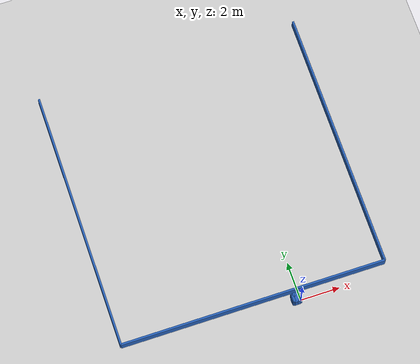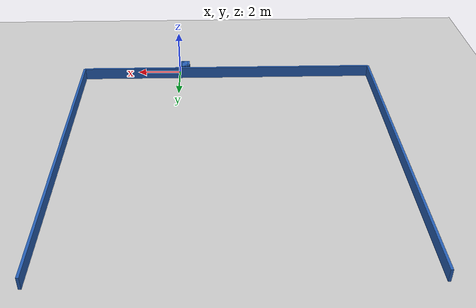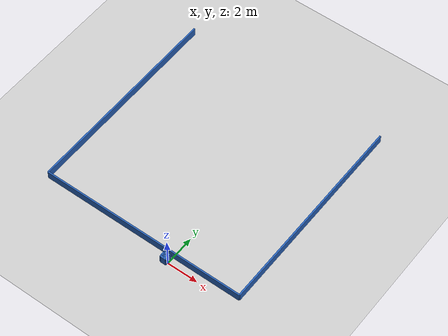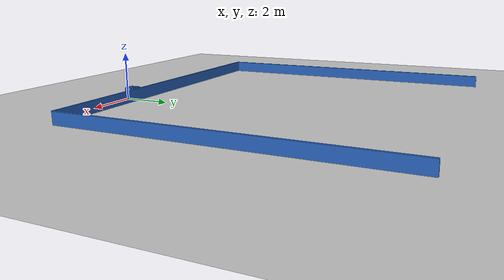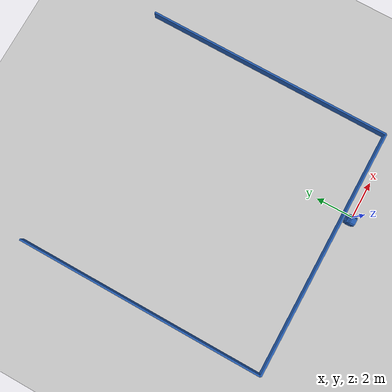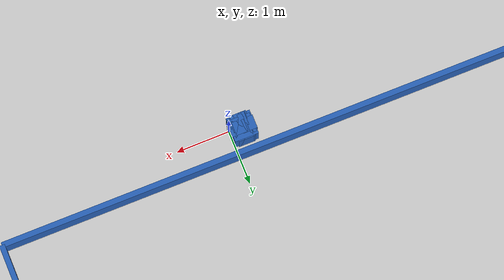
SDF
<?xml version="1.0" ?>
    <sdf version="1.5">
      <world name="default">
        <!-- A global light source -->
        <include>
          <uri>model://sun</uri>
        </include>
        <!-- A ground plane -->
        <include>
          <uri>model://ground_plane</uri>
        </include>

    <model name='libopen_space_final_T2B_115_24'>
      <static>1</static>
      <pose frame=''>-0.225000 0.075000 0.000000 0.000000 0.000000 0.000000</pose>
      <link name='link'>
        <inertial>
          <mass>1</mass>
          <inertia>
            <ixx>0.145833</ixx>
            <ixy>0</ixy>
            <ixz>0</ixz>
            <iyy>0.145833</iyy>
            <iyz>0</iyz>
            <izz>0.125</izz>
          </inertia>
        </inertial>
        <collision name='collision'>
          <geometry>
            <box>
              <size>0.26 0.49 1</size>
            </box>
          </geometry>
          <max_contacts>10</max_contacts>
          <surface>
            <contact>
              <ode/>
            </contact>
            <bounce/>
            <friction>
              <torsional>
                <ode/>
              </torsional>
              <ode/>
            </friction>
          </surface>
        </collision>
        <visual name='visual'>
          <geometry>
            <box>
              <size>0.26 0.49 1</size>
            </box>
          </geometry>
	    <material>
              <ambient>0.152000 0.379000 0.720000 1</ambient>
	      <diffuse>0.152000 0.379000 0.720000 1</diffuse>
          </material>
          <material>
            <script>
              <name>Gazebo/Grey</name>
              <uri>file://media/materials/scripts/gazebo.material</uri>
            </script>
          </material>
        </visual>
        <self_collide>0</self_collide>
        <kinematic>0</kinematic>
        <gravity>1</gravity>
      </link>
      <plugin name='libopen_space_final_T2B_115_24' filename='libopen_space_final_T2B_115_24.so'/>
    </model>

    <model name='libopen_space_final_T2B_73_9'>
      <static>1</static>
      <pose frame=''>-0.225000 0.075000 0.000000 0.000000 0.000000 0.000000</pose>
      <link name='link'>
        <inertial>
          <mass>1</mass>
          <inertia>
            <ixx>0.145833</ixx>
            <ixy>0</ixy>
            <ixz>0</ixz>
            <iyy>0.145833</iyy>
            <iyz>0</iyz>
            <izz>0.125</izz>
          </inertia>
        </inertial>
        <collision name='collision'>
          <geometry>
            <box>
              <size>0.33 0.15 1</size>
            </box>
          </geometry>
          <max_contacts>10</max_contacts>
          <surface>
            <contact>
              <ode/>
            </contact>
            <bounce/>
            <friction>
              <torsional>
                <ode/>
              </torsional>
              <ode/>
            </friction>
          </surface>
        </collision>
        <visual name='visual'>
          <geometry>
            <box>
              <size>0.33 0.15 1</size>
            </box>
          </geometry>
	    <material>
              <ambient>0.152000 0.379000 0.720000 1</ambient>
	      <diffuse>0.152000 0.379000 0.720000 1</diffuse>
          </material>
          <material>
            <script>
              <name>Gazebo/Grey</name>
              <uri>file://media/materials/scripts/gazebo.material</uri>
            </script>
          </material>
        </visual>
        <self_collide>0</self_collide>
        <kinematic>0</kinematic>
        <gravity>1</gravity>
      </link>
      <plugin name='libopen_space_final_T2B_73_9' filename='libopen_space_final_T2B_73_9.so'/>
    </model>

    <model name='libopen_space_final_T2B_122_2'>
      <static>1</static>
      <pose frame=''>-0.225000 0.075000 0.000000 0.000000 0.000000 0.000000</pose>
      <link name='link'>
        <inertial>
          <mass>1</mass>
          <inertia>
            <ixx>0.145833</ixx>
            <ixy>0</ixy>
            <ixz>0</ixz>
            <iyy>0.145833</iyy>
            <iyz>0</iyz>
            <izz>0.125</izz>
          </inertia>
        </inertial>
        <collision name='collision'>
          <geometry>
            <box>
              <size>0.32 0.25 1</size>
            </box>
          </geometry>
          <max_contacts>10</max_contacts>
          <surface>
            <contact>
              <ode/>
            </contact>
            <bounce/>
            <friction>
              <torsional>
                <ode/>
              </torsional>
              <ode/>
            </friction>
          </surface>
        </collision>
        <visual name='visual'>
          <geometry>
            <box>
              <size>0.32 0.25 1</size>
            </box>
          </geometry>
	    <material>
              <ambient>0.152000 0.379000 0.720000 1</ambient>
	      <diffuse>0.152000 0.379000 0.720000 1</diffuse>
          </material>
          <material>
            <script>
              <name>Gazebo/Grey</name>
              <uri>file://media/materials/scripts/gazebo.material</uri>
            </script>
          </material>
        </visual>
        <self_collide>0</self_collide>
        <kinematic>0</kinematic>
        <gravity>1</gravity>
      </link>
      <plugin name='libopen_space_final_T2B_122_2' filename='libopen_space_final_T2B_122_2.so'/>
    </model>

    <model name='libopen_space_final_T2B_90_15'>
      <static>1</static>
      <pose frame=''>-0.225000 0.075000 0.000000 0.000000 0.000000 0.000000</pose>
      <link name='link'>
        <inertial>
          <mass>1</mass>
          <inertia>
            <ixx>0.145833</ixx>
            <ixy>0</ixy>
            <ixz>0</ixz>
            <iyy>0.145833</iyy>
            <iyz>0</iyz>
            <izz>0.125</izz>
          </inertia>
        </inertial>
        <collision name='collision'>
          <geometry>
            <box>
              <size>0.18 0.27 1</size>
            </box>
          </geometry>
          <max_contacts>10</max_contacts>
          <surface>
            <contact>
              <ode/>
            </contact>
            <bounce/>
            <friction>
              <torsional>
                <ode/>
              </torsional>
              <ode/>
            </friction>
          </surface>
        </collision>
        <visual name='visual'>
          <geometry>
            <box>
              <size>0.18 0.27 1</size>
            </box>
          </geometry>
	    <material>
              <ambient>0.152000 0.379000 0.720000 1</ambient>
	      <diffuse>0.152000 0.379000 0.720000 1</diffuse>
          </material>
          <material>
            <script>
              <name>Gazebo/Grey</name>
              <uri>file://media/materials/scripts/gazebo.material</uri>
            </script>
          </material>
        </visual>
        <self_collide>0</self_collide>
        <kinematic>0</kinematic>
        <gravity>1</gravity>
      </link>
      <plugin name='libopen_space_final_T2B_90_15' filename='libopen_space_final_T2B_90_15.so'/>
    </model>

    <model name='libopen_space_final_T2B_96_0'>
      <static>1</static>
      <pose frame=''>-0.225000 0.075000 0.000000 0.000000 0.000000 0.000000</pose>
      <link name='link'>
        <inertial>
          <mass>1</mass>
          <inertia>
            <ixx>0.145833</ixx>
            <ixy>0</ixy>
            <ixz>0</ixz>
            <iyy>0.145833</iyy>
            <iyz>0</iyz>
            <izz>0.125</izz>
          </inertia>
        </inertial>
        <collision name='collision'>
          <geometry>
            <box>
              <size>0.20 0.27 1</size>
            </box>
          </geometry>
          <max_contacts>10</max_contacts>
          <surface>
            <contact>
              <ode/>
            </contact>
            <bounce/>
            <friction>
              <torsional>
                <ode/>
              </torsional>
              <ode/>
            </friction>
          </surface>
        </collision>
        <visual name='visual'>
          <geometry>
            <box>
              <size>0.20 0.27 1</size>
            </box>
          </geometry>
	    <material>
              <ambient>0.152000 0.379000 0.720000 1</ambient>
	      <diffuse>0.152000 0.379000 0.720000 1</diffuse>
          </material>
          <material>
            <script>
              <name>Gazebo/Grey</name>
              <uri>file://media/materials/scripts/gazebo.material</uri>
            </script>
          </material>
        </visual>
        <self_collide>0</self_collide>
        <kinematic>0</kinematic>
        <gravity>1</gravity>
      </link>
      <plugin name='libopen_space_final_T2B_96_0' filename='libopen_space_final_T2B_96_0.so'/>
    </model>

    <model name='libopen_space_final_T2B_125_86'>
      <static>1</static>
      <pose frame=''>-0.225000 0.075000 0.000000 0.000000 0.000000 0.000000</pose>
      <link name='link'>
        <inertial>
          <mass>1</mass>
          <inertia>
            <ixx>0.145833</ixx>
            <ixy>0</ixy>
            <ixz>0</ixz>
            <iyy>0.145833</iyy>
            <iyz>0</iyz>
            <izz>0.125</izz>
          </inertia>
        </inertial>
        <collision name='collision'>
          <geometry>
            <box>
              <size>0.31 0.49 1</size>
            </box>
          </geometry>
          <max_contacts>10</max_contacts>
          <surface>
            <contact>
              <ode/>
            </contact>
            <bounce/>
            <friction>
              <torsional>
                <ode/>
              </torsional>
              <ode/>
            </friction>
          </surface>
        </collision>
        <visual name='visual'>
          <geometry>
            <box>
              <size>0.31 0.49 1</size>
            </box>
          </geometry>
	    <material>
              <ambient>0.152000 0.379000 0.720000 1</ambient>
	      <diffuse>0.152000 0.379000 0.720000 1</diffuse>
          </material>
          <material>
            <script>
              <name>Gazebo/Grey</name>
              <uri>file://media/materials/scripts/gazebo.material</uri>
            </script>
          </material>
        </visual>
        <self_collide>0</self_collide>
        <kinematic>0</kinematic>
        <gravity>1</gravity>
      </link>
      <plugin name='libopen_space_final_T2B_125_86' filename='libopen_space_final_T2B_125_86.so'/>
    </model>

    <model name='libopen_space_final_T2B_55_44'>
      <static>1</static>
      <pose frame=''>-0.225000 0.075000 0.000000 0.000000 0.000000 0.000000</pose>
      <link name='link'>
        <inertial>
          <mass>1</mass>
          <inertia>
            <ixx>0.145833</ixx>
            <ixy>0</ixy>
            <ixz>0</ixz>
            <iyy>0.145833</iyy>
            <iyz>0</iyz>
            <izz>0.125</izz>
          </inertia>
        </inertial>
        <collision name='collision'>
          <geometry>
            <box>
              <size>0.45 0.45 1</size>
            </box>
          </geometry>
          <max_contacts>10</max_contacts>
          <surface>
            <contact>
              <ode/>
            </contact>
            <bounce/>
            <friction>
              <torsional>
                <ode/>
              </torsional>
              <ode/>
            </friction>
          </surface>
        </collision>
        <visual name='visual'>
          <geometry>
            <box>
              <size>0.45 0.45 1</size>
            </box>
          </geometry>
	    <material>
              <ambient>0.152000 0.379000 0.720000 1</ambient>
	      <diffuse>0.152000 0.379000 0.720000 1</diffuse>
          </material>
          <material>
            <script>
              <name>Gazebo/Grey</name>
              <uri>file://media/materials/scripts/gazebo.material</uri>
            </script>
          </material>
        </visual>
        <self_collide>0</self_collide>
        <kinematic>0</kinematic>
        <gravity>1</gravity>
      </link>
      <plugin name='libopen_space_final_T2B_55_44' filename='libopen_space_final_T2B_55_44.so'/>
    </model>

    <model name='libopen_space_final_T2B_113_82'>
      <static>1</static>
      <pose frame=''>-0.225000 0.075000 0.000000 0.000000 0.000000 0.000000</pose>
      <link name='link'>
        <inertial>
          <mass>1</mass>
          <inertia>
            <ixx>0.145833</ixx>
            <ixy>0</ixy>
            <ixz>0</ixz>
            <iyy>0.145833</iyy>
            <iyz>0</iyz>
            <izz>0.125</izz>
          </inertia>
        </inertial>
        <collision name='collision'>
          <geometry>
            <box>
              <size>0.24 0.48 1</size>
            </box>
          </geometry>
          <max_contacts>10</max_contacts>
          <surface>
            <contact>
              <ode/>
            </contact>
            <bounce/>
            <friction>
              <torsional>
                <ode/>
              </torsional>
              <ode/>
            </friction>
          </surface>
        </collision>
        <visual name='visual'>
          <geometry>
            <box>
              <size>0.24 0.48 1</size>
            </box>
          </geometry>
	    <material>
              <ambient>0.152000 0.379000 0.720000 1</ambient>
	      <diffuse>0.152000 0.379000 0.720000 1</diffuse>
          </material>
          <material>
            <script>
              <name>Gazebo/Grey</name>
              <uri>file://media/materials/scripts/gazebo.material</uri>
            </script>
          </material>
        </visual>
        <self_collide>0</self_collide>
        <kinematic>0</kinematic>
        <gravity>1</gravity>
      </link>
      <plugin name='libopen_space_final_T2B_113_82' filename='libopen_space_final_T2B_113_82.so'/>
    </model>

    <model name='libopen_space_final_T2B_103_85'>
      <static>1</static>
      <pose frame=''>-0.225000 0.075000 0.000000 0.000000 0.000000 0.000000</pose>
      <link name='link'>
        <inertial>
          <mass>1</mass>
          <inertia>
            <ixx>0.145833</ixx>
            <ixy>0</ixy>
            <ixz>0</ixz>
            <iyy>0.145833</iyy>
            <iyz>0</iyz>
            <izz>0.125</izz>
          </inertia>
        </inertial>
        <collision name='collision'>
          <geometry>
            <box>
              <size>0.48 0.25 1</size>
            </box>
          </geometry>
          <max_contacts>10</max_contacts>
          <surface>
            <contact>
              <ode/>
            </contact>
            <bounce/>
            <friction>
              <torsional>
                <ode/>
              </torsional>
              <ode/>
            </friction>
          </surface>
        </collision>
        <visual name='visual'>
          <geometry>
            <box>
              <size>0.48 0.25 1</size>
            </box>
          </geometry>
	    <material>
              <ambient>0.152000 0.379000 0.720000 1</ambient>
	      <diffuse>0.152000 0.379000 0.720000 1</diffuse>
          </material>
          <material>
            <script>
              <name>Gazebo/Grey</name>
              <uri>file://media/materials/scripts/gazebo.material</uri>
            </script>
          </material>
        </visual>
        <self_collide>0</self_collide>
        <kinematic>0</kinematic>
        <gravity>1</gravity>
      </link>
      <plugin name='libopen_space_final_T2B_103_85' filename='libopen_space_final_T2B_103_85.so'/>
    </model>

    <model name='libopen_space_final_T2B_90_7'>
      <static>1</static>
      <pose frame=''>-0.225000 0.075000 0.000000 0.000000 0.000000 0.000000</pose>
      <link name='link'>
        <inertial>
          <mass>1</mass>
          <inertia>
            <ixx>0.145833</ixx>
            <ixy>0</ixy>
            <ixz>0</ixz>
            <iyy>0.145833</iyy>
            <iyz>0</iyz>
            <izz>0.125</izz>
          </inertia>
        </inertial>
        <collision name='collision'>
          <geometry>
            <box>
              <size>0.41 0.36 1</size>
            </box>
          </geometry>
          <max_contacts>10</max_contacts>
          <surface>
            <contact>
              <ode/>
            </contact>
            <bounce/>
            <friction>
              <torsional>
                <ode/>
              </torsional>
              <ode/>
            </friction>
          </surface>
        </collision>
        <visual name='visual'>
          <geometry>
            <box>
              <size>0.41 0.36 1</size>
            </box>
          </geometry>
	    <material>
              <ambient>0.152000 0.379000 0.720000 1</ambient>
	      <diffuse>0.152000 0.379000 0.720000 1</diffuse>
          </material>
          <material>
            <script>
              <name>Gazebo/Grey</name>
              <uri>file://media/materials/scripts/gazebo.material</uri>
            </script>
          </material>
        </visual>
        <self_collide>0</self_collide>
        <kinematic>0</kinematic>
        <gravity>1</gravity>
      </link>
      <plugin name='libopen_space_final_T2B_90_7' filename='libopen_space_final_T2B_90_7.so'/>
    </model>

    <model name='libopen_space_final_T2B_148_40'>
      <static>1</static>
      <pose frame=''>-0.225000 0.075000 0.000000 0.000000 0.000000 0.000000</pose>
      <link name='link'>
        <inertial>
          <mass>1</mass>
          <inertia>
            <ixx>0.145833</ixx>
            <ixy>0</ixy>
            <ixz>0</ixz>
            <iyy>0.145833</iyy>
            <iyz>0</iyz>
            <izz>0.125</izz>
          </inertia>
        </inertial>
        <collision name='collision'>
          <geometry>
            <box>
              <size>0.36 0.40 1</size>
            </box>
          </geometry>
          <max_contacts>10</max_contacts>
          <surface>
            <contact>
              <ode/>
            </contact>
            <bounce/>
            <friction>
              <torsional>
                <ode/>
              </torsional>
              <ode/>
            </friction>
          </surface>
        </collision>
        <visual name='visual'>
          <geometry>
            <box>
              <size>0.36 0.40 1</size>
            </box>
          </geometry>
	    <material>
              <ambient>0.152000 0.379000 0.720000 1</ambient>
	      <diffuse>0.152000 0.379000 0.720000 1</diffuse>
          </material>
          <material>
            <script>
              <name>Gazebo/Grey</name>
              <uri>file://media/materials/scripts/gazebo.material</uri>
            </script>
          </material>
        </visual>
        <self_collide>0</self_collide>
        <kinematic>0</kinematic>
        <gravity>1</gravity>
      </link>
      <plugin name='libopen_space_final_T2B_148_40' filename='libopen_space_final_T2B_148_40.so'/>
    </model>

    <model name='libopen_space_final_T2B_73_55'>
      <static>1</static>
      <pose frame=''>-0.225000 0.075000 0.000000 0.000000 0.000000 0.000000</pose>
      <link name='link'>
        <inertial>
          <mass>1</mass>
          <inertia>
            <ixx>0.145833</ixx>
            <ixy>0</ixy>
            <ixz>0</ixz>
            <iyy>0.145833</iyy>
            <iyz>0</iyz>
            <izz>0.125</izz>
          </inertia>
        </inertial>
        <collision name='collision'>
          <geometry>
            <box>
              <size>0.22 0.44 1</size>
            </box>
          </geometry>
          <max_contacts>10</max_contacts>
          <surface>
            <contact>
              <ode/>
            </contact>
            <bounce/>
            <friction>
              <torsional>
                <ode/>
              </torsional>
              <ode/>
            </friction>
          </surface>
        </collision>
        <visual name='visual'>
          <geometry>
            <box>
              <size>0.22 0.44 1</size>
            </box>
          </geometry>
	    <material>
              <ambient>0.152000 0.379000 0.720000 1</ambient>
	      <diffuse>0.152000 0.379000 0.720000 1</diffuse>
          </material>
          <material>
            <script>
              <name>Gazebo/Grey</name>
              <uri>file://media/materials/scripts/gazebo.material</uri>
            </script>
          </material>
        </visual>
        <self_collide>0</self_collide>
        <kinematic>0</kinematic>
        <gravity>1</gravity>
      </link>
      <plugin name='libopen_space_final_T2B_73_55' filename='libopen_space_final_T2B_73_55.so'/>
    </model>

    <model name='libopen_space_final_T2B_91_29'>
      <static>1</static>
      <pose frame=''>-0.225000 0.075000 0.000000 0.000000 0.000000 0.000000</pose>
      <link name='link'>
        <inertial>
          <mass>1</mass>
          <inertia>
            <ixx>0.145833</ixx>
            <ixy>0</ixy>
            <ixz>0</ixz>
            <iyy>0.145833</iyy>
            <iyz>0</iyz>
            <izz>0.125</izz>
          </inertia>
        </inertial>
        <collision name='collision'>
          <geometry>
            <box>
              <size>0.13 0.22 1</size>
            </box>
          </geometry>
          <max_contacts>10</max_contacts>
          <surface>
            <contact>
              <ode/>
            </contact>
            <bounce/>
            <friction>
              <torsional>
                <ode/>
              </torsional>
              <ode/>
            </friction>
          </surface>
        </collision>
        <visual name='visual'>
          <geometry>
            <box>
              <size>0.13 0.22 1</size>
            </box>
          </geometry>
	    <material>
              <ambient>0.152000 0.379000 0.720000 1</ambient>
	      <diffuse>0.152000 0.379000 0.720000 1</diffuse>
          </material>
          <material>
            <script>
              <name>Gazebo/Grey</name>
              <uri>file://media/materials/scripts/gazebo.material</uri>
            </script>
          </material>
        </visual>
        <self_collide>0</self_collide>
        <kinematic>0</kinematic>
        <gravity>1</gravity>
      </link>
      <plugin name='libopen_space_final_T2B_91_29' filename='libopen_space_final_T2B_91_29.so'/>
    </model>

        <model name='bottom_wall'>
          <static>1</static>
          <pose frame=''>-2.25 0.5 0.000000 0.000000 0.000000 1.57079632</pose>
          <link name='link'>
            <inertial>
            <mass>1</mass>
            <inertia>
              <ixx>0.145833</ixx>
              <ixy>0</ixy>
              <ixz>0</ixz>
              <iyy>0.145833</iyy>
              <iyz>0</iyz>
              <izz>0.125</izz>
            </inertia>
            </inertial>
            <collision name='collision'>
            <geometry>
              <box>
              <size>0.1 13.5 1</size>
              </box>
            </geometry>
            <max_contacts>10</max_contacts>
            <surface>
              <contact>
              <ode/>
              </contact>
              <bounce/>
              <friction>
              <torsional>
                <ode/>
              </torsional>
              <ode/>
              </friction>
            </surface>
            </collision>
            <visual name='visual'>
            <geometry>
              <box>
              <size>0.1 13.5 1</size>
              </box>
            </geometry>
            <material>
              <ambient>0.152000 0.379000 0.720000 1</ambient>
            <diffuse>0.152000 0.379000 0.720000 1</diffuse>
            </material>
            <material>
              <script>
              <name>Gazebo/Grey</name>
              <uri>file://media/materials/scripts/gazebo.material</uri>
              </script>
            </material>
            </visual>
            <self_collide>0</self_collide>
            <kinematic>0</kinematic>
            <gravity>1</gravity>
          </link>
        </model>

        <model name='left_wall'>
          <static>1</static>
          <pose frame=''>-9 7.25 0.000000 0.000000 0.000000 0.000000</pose>
          <link name='link'>
            <inertial>
            <mass>1</mass>
            <inertia>
              <ixx>0.145833</ixx>
              <ixy>0</ixy>
              <ixz>0</ixz>
              <iyy>0.145833</iyy>
              <iyz>0</iyz>
              <izz>0.125</izz>
            </inertia>
            </inertial>
            <collision name='collision'>
            <geometry>
              <box>
              <size>0.1 13.5 1</size>
              </box>
            </geometry>
            <max_contacts>10</max_contacts>
            <surface>
              <contact>
              <ode/>
              </contact>
              <bounce/>
              <friction>
              <torsional>
                <ode/>
              </torsional>
              <ode/>
              </friction>
            </surface>
            </collision>
            <visual name='visual'>
            <geometry>
              <box>
              <size>0.1 13.5 1</size>
              </box>
            </geometry>
            <material>
              <ambient>0.152000 0.379000 0.720000 1</ambient>
            <diffuse>0.152000 0.379000 0.720000 1</diffuse>
            </material>
            <material>
              <script>
              <name>Gazebo/Grey</name>
              <uri>file://media/materials/scripts/gazebo.material</uri>
              </script>
            </material>
            </visual>
            <self_collide>0</self_collide>
            <kinematic>0</kinematic>
            <gravity>1</gravity>
          </link>
        </model>

        <model name='right_wall'>
          <static>1</static>
          <pose frame=''>4.5 7.25 0.000000 0.000000 0.000000 0.000000</pose>
          <link name='link'>
            <inertial>
            <mass>1</mass>
            <inertia>
              <ixx>0.145833</ixx>
              <ixy>0</ixy>
              <ixz>0</ixz>
              <iyy>0.145833</iyy>
              <iyz>0</iyz>
              <izz>0.125</izz>
            </inertia>
            </inertial>
            <collision name='collision'>
            <geometry>
              <box>
              <size>0.1 13.5 1</size>
              </box>
            </geometry>
            <max_contacts>10</max_contacts>
            <surface>
              <contact>
              <ode/>
              </contact>
              <bounce/>
              <friction>
              <torsional>
                <ode/>
              </torsional>
              <ode/>
              </friction>
            </surface>
            </collision>
            <visual name='visual'>
            <geometry>
              <box>
              <size>0.1 13.5 1</size>
              </box>
            </geometry>
            <material>
              <ambient>0.152000 0.379000 0.720000 1</ambient>
            <diffuse>0.152000 0.379000 0.720000 1</diffuse>
            </material>
            <material>
              <script>
              <name>Gazebo/Grey</name>
              <uri>file://media/materials/scripts/gazebo.material</uri>
              </script>
            </material>
            </visual>
            <self_collide>0</self_collide>
            <kinematic>0</kinematic>
            <gravity>1</gravity>
          </link>
        </model>

      </world>
    </sdf>"
